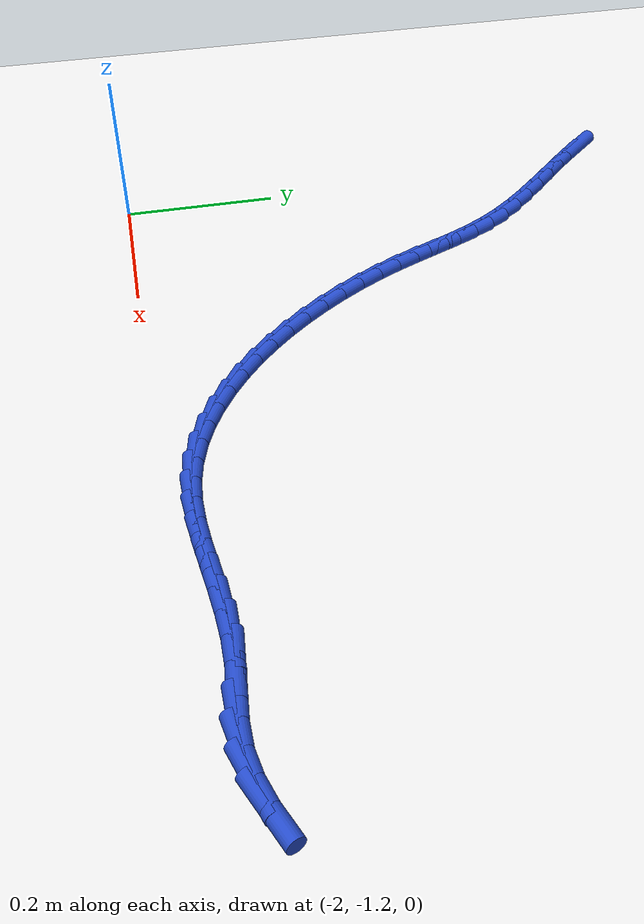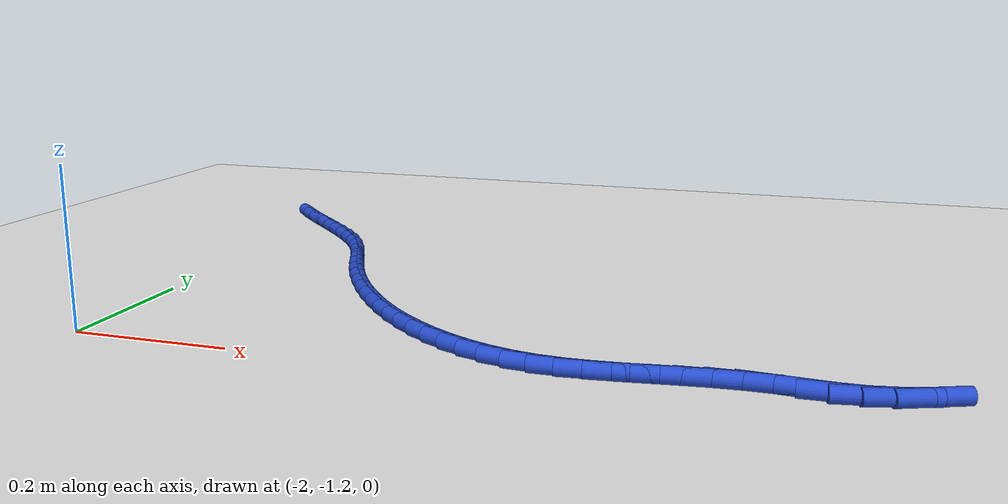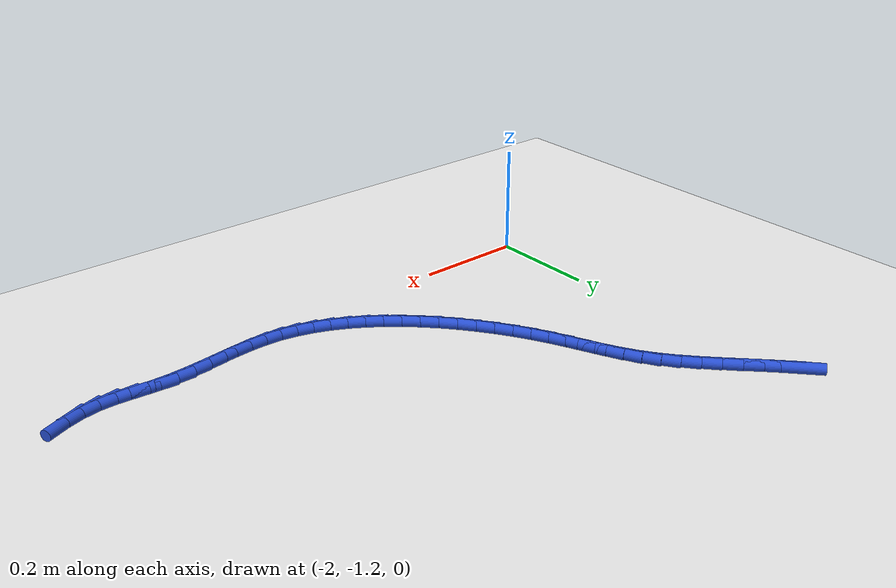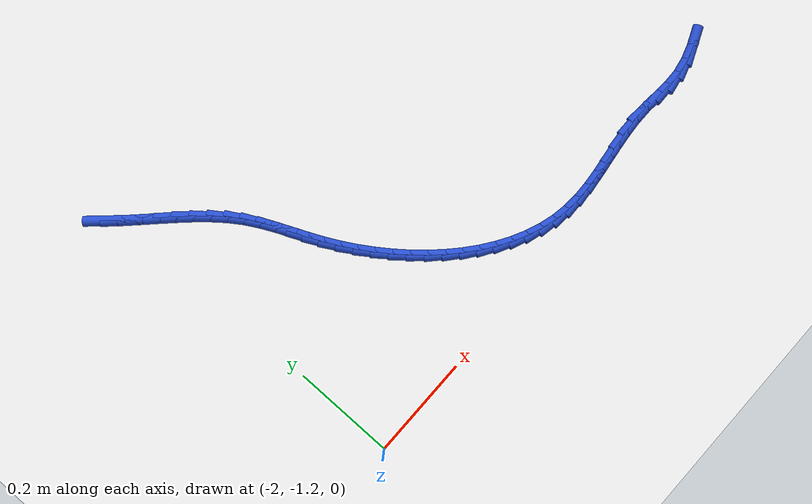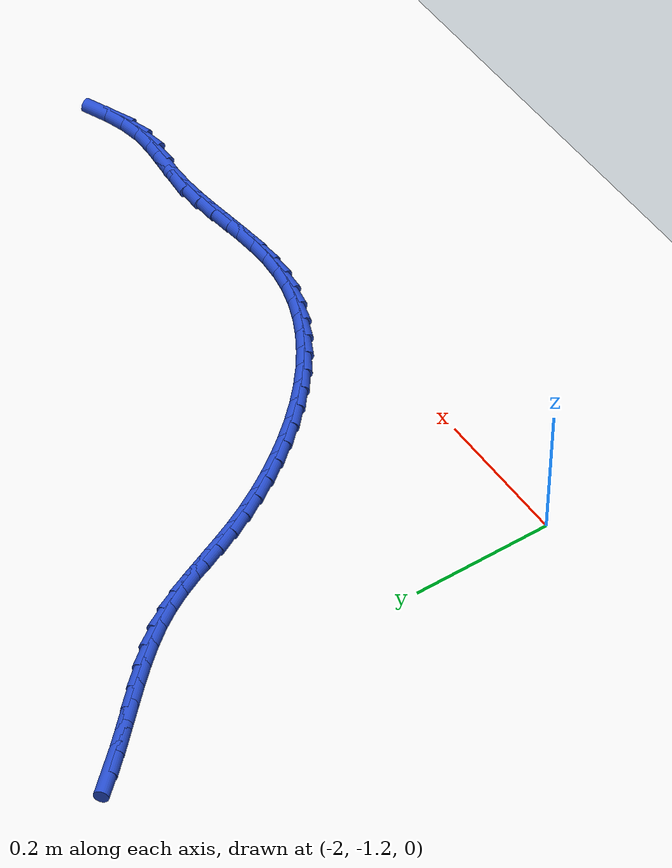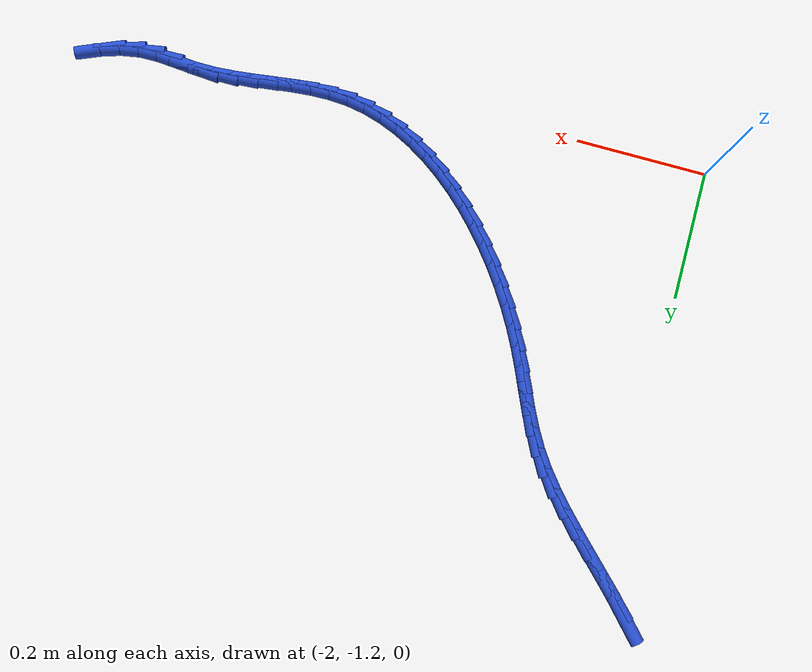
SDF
<sdf version="1.6">
 <world name="default">
  <model name="ground_plane">
   <static>1</static>
   <link name="link">
    <collision name="collision">
     <geometry><plane><normal>0 0 1</normal><size>100 100</size></plane></geometry>
     <surface><friction><ode><mu>100</mu><mu2>50</mu2></ode></friction></surface>
    </collision>
    <visual name="visual">
     <cast_shadows>0</cast_shadows>
     <geometry><plane><normal>0 0 1</normal><size>100 100</size></plane></geometry>
     <material>
      <script><uri>file://media/materials/scripts/gazebo.material</uri><name>Gazebo/WhiteGlow</name></script>
     </material>
    </visual>
   </link>
  </model>
  <model name="line">
   <link name="link_148">
    <pose>-2.0297479284535482 -0.5328654607314254 0.01 0 1.57 -0.8287087077910579</pose>
    <collision name="collision">
     <geometry><cylinder><radius>0.01</radius><length>0.08</length></cylinder></geometry>
    </collision>
    <visual name="visual">
     <material>
      <script><name>Gazebo/Blue</name><uri>file://media/materials/scripts/gazebo.material</uri></script>
     </material>
     <geometry><cylinder><radius>0.01</radius><length>0.08</length></cylinder></geometry>
    </visual>
   </link>
   <link name="link_149">
    <pose>-2.0081536202088803 -0.5564162512589054 0.01 0 1.57 -0.799565282022636</pose>
    <collision name="collision">
     <geometry><cylinder><radius>0.01</radius><length>0.08</length></cylinder></geometry>
    </collision>
    <visual name="visual">
     <material>
      <script><name>Gazebo/Blue</name><uri>file://media/materials/scripts/gazebo.material</uri></script>
     </material>
     <geometry><cylinder><radius>0.01</radius><length>0.08</length></cylinder></geometry>
    </visual>
   </link>
   <link name="link_150">
    <pose>-1.9853206682475746 -0.5799054992300099 0.01 0 1.57 -0.7873501899927877</pose>
    <collision name="collision">
     <geometry><cylinder><radius>0.01</radius><length>0.08</length></cylinder></geometry>
    </collision>
    <visual name="visual">
     <material>
      <script><name>Gazebo/Blue</name><uri>file://media/materials/scripts/gazebo.material</uri></script>
     </material>
     <geometry><cylinder><radius>0.01</radius><length>0.08</length></cylinder></geometry>
    </visual>
   </link>
   <link name="link_151">
    <pose>-1.961858896199537 -0.6034590465484063 0.01 0 1.57 -0.7909655614004615</pose>
    <collision name="collision">
     <geometry><cylinder><radius>0.01</radius><length>0.08</length></cylinder></geometry>
    </collision>
    <visual name="visual">
     <material>
      <script><name>Gazebo/Blue</name><uri>file://media/materials/scripts/gazebo.material</uri></script>
     </material>
     <geometry><cylinder><radius>0.01</radius><length>0.08</length></cylinder></geometry>
    </visual>
   </link>
   <link name="link_152">
    <pose>-1.938378127694677 -0.6272027351177634 0.01 0 1.57 -0.8103076008691977</pose>
    <collision name="collision">
     <geometry><cylinder><radius>0.01</radius><length>0.08</length></cylinder></geometry>
    </collision>
    <visual name="visual">
     <material>
      <script><name>Gazebo/Blue</name><uri>file://media/materials/scripts/gazebo.material</uri></script>
     </material>
     <geometry><cylinder><radius>0.01</radius><length>0.08</length></cylinder></geometry>
    </visual>
   </link>
   <link name="link_153">
    <pose>-1.915488186362902 -0.651262406841749 0.01 0 1.57 -0.8462055123630006</pose>
    <collision name="collision">
     <geometry><cylinder><radius>0.01</radius><length>0.08</length></cylinder></geometry>
    </collision>
    <visual name="visual">
     <material>
      <script><name>Gazebo/Blue</name><uri>file://media/materials/scripts/gazebo.material</uri></script>
     </material>
     <geometry><cylinder><radius>0.01</radius><length>0.08</length></cylinder></geometry>
    </visual>
   </link>
   <link name="link_154">
    <pose>-1.8937988958341205 -0.6757639036240313 0.01 0 1.57 -0.900363518766508</pose>
    <collision name="collision">
     <geometry><cylinder><radius>0.01</radius><length>0.08</length></cylinder></geometry>
    </collision>
    <visual name="visual">
     <material>
      <script><name>Gazebo/Blue</name><uri>file://media/materials/scripts/gazebo.material</uri></script>
     </material>
     <geometry><cylinder><radius>0.01</radius><length>0.08</length></cylinder></geometry>
    </visual>
   </link>
   <link name="link_155">
    <pose>-1.8739200797382405 -0.7008330673682786 0.01 0 1.57 -0.9749377284834236</pose>
    <collision name="collision">
     <geometry><cylinder><radius>0.01</radius><length>0.08</length></cylinder></geometry>
    </collision>
    <visual name="visual">
     <material>
      <script><name>Gazebo/Blue</name><uri>file://media/materials/scripts/gazebo.material</uri></script>
     </material>
     <geometry><cylinder><radius>0.01</radius><length>0.08</length></cylinder></geometry>
    </visual>
   </link>
   <link name="link_156">
    <pose>-1.8564522324978951 -0.726594034806042 0.01 0 1.57 -1.055582311168776</pose>
    <collision name="collision">
     <geometry><cylinder><radius>0.01</radius><length>0.08</length></cylinder></geometry>
    </collision>
    <visual name="visual">
     <material>
      <script><name>Gazebo/Blue</name><uri>file://media/materials/scripts/gazebo.material</uri></script>
     </material>
     <geometry><cylinder><radius>0.01</radius><length>0.08</length></cylinder></geometry>
    </visual>
   </link>
   <link name="link_157">
    <pose>-1.8414592760098603 -0.7530728691152695 0.01 0 1.57 -1.1149742134500347</pose>
    <collision name="collision">
     <geometry><cylinder><radius>0.01</radius><length>0.08</length></cylinder></geometry>
    </collision>
    <visual name="visual">
     <material>
      <script><name>Gazebo/Blue</name><uri>file://media/materials/scripts/gazebo.material</uri></script>
     </material>
     <geometry><cylinder><radius>0.01</radius><length>0.08</length></cylinder></geometry>
    </visual>
   </link>
   <link name="link_158">
    <pose>-1.8281865062649298 -0.7801460068199102 0.01 0 1.57 -1.14833136755022</pose>
    <collision name="collision">
     <geometry><cylinder><radius>0.01</radius><length>0.08</length></cylinder></geometry>
    </collision>
    <visual name="visual">
     <material>
      <script><name>Gazebo/Blue</name><uri>file://media/materials/scripts/gazebo.material</uri></script>
     </material>
     <geometry><cylinder><radius>0.01</radius><length>0.08</length></cylinder></geometry>
    </visual>
   </link>
   <link name="link_159">
    <pose>-1.8158103045933558 -0.8076772883728717 0.01 0 1.57 -1.1548521210735998</pose>
    <collision name="collision">
     <geometry><cylinder><radius>0.01</radius><length>0.08</length></cylinder></geometry>
    </collision>
    <visual name="visual">
     <material>
      <script><name>Gazebo/Blue</name><uri>file://media/materials/scripts/gazebo.material</uri></script>
     </material>
     <geometry><cylinder><radius>0.01</radius><length>0.08</length></cylinder></geometry>
    </visual>
   </link>
   <link name="link_160">
    <pose>-1.8035070523253902 -0.8355305542270618 0.01 0 1.57 -1.1350770653718363</pose>
    <collision name="collision">
     <geometry><cylinder><radius>0.01</radius><length>0.08</length></cylinder></geometry>
    </collision>
    <visual name="visual">
     <material>
      <script><name>Gazebo/Blue</name><uri>file://media/materials/scripts/gazebo.material</uri></script>
     </material>
     <geometry><cylinder><radius>0.01</radius><length>0.08</length></cylinder></geometry>
    </visual>
   </link>
   <link name="link_161">
    <pose>-1.790453130791283 -0.8635696448353875 0.01 0 1.57 -1.0937796663085992</pose>
    <collision name="collision">
     <geometry><cylinder><radius>0.01</radius><length>0.08</length></cylinder></geometry>
    </collision>
    <visual name="visual">
     <material>
      <script><name>Gazebo/Blue</name><uri>file://media/materials/scripts/gazebo.material</uri></script>
     </material>
     <geometry><cylinder><radius>0.01</radius><length>0.08</length></cylinder></geometry>
    </visual>
   </link>
   <link name="link_162">
    <pose>-1.775942122040791 -0.8916468757339817 0.01 0 1.57 -1.048171119187549</pose>
    <collision name="collision">
     <geometry><cylinder><radius>0.01</radius><length>0.08</length></cylinder></geometry>
    </collision>
    <visual name="visual">
     <material>
      <script><name>Gazebo/Blue</name><uri>file://media/materials/scripts/gazebo.material</uri></script>
     </material>
     <geometry><cylinder><radius>0.01</radius><length>0.08</length></cylinder></geometry>
    </visual>
   </link>
   <link name="link_163">
    <pose>-1.7598651003878065 -0.9195558081386362 0.01 0 1.57 -1.0027188257186643</pose>
    <collision name="collision">
     <geometry><cylinder><radius>0.01</radius><length>0.08</length></cylinder></geometry>
    </collision>
    <visual name="visual">
     <material>
      <script><name>Gazebo/Blue</name><uri>file://media/materials/scripts/gazebo.material</uri></script>
     </material>
     <geometry><cylinder><radius>0.01</radius><length>0.08</length></cylinder></geometry>
    </visual>
   </link>
   <link name="link_164">
    <pose>-1.7423030572834166 -0.9470713277893494 0.01 0 1.57 -0.9566326378132299</pose>
    <collision name="collision">
     <geometry><cylinder><radius>0.01</radius><length>0.08</length></cylinder></geometry>
    </collision>
    <visual name="visual">
     <material>
      <script><name>Gazebo/Blue</name><uri>file://media/materials/scripts/gazebo.material</uri></script>
     </material>
     <geometry><cylinder><radius>0.01</radius><length>0.08</length></cylinder></geometry>
    </visual>
   </link>
   <link name="link_165">
    <pose>-1.7233370629863993 -0.9739683126765745 0.01 0 1.57 -0.9091513544925426</pose>
    <collision name="collision">
     <geometry><cylinder><radius>0.01</radius><length>0.08</length></cylinder></geometry>
    </collision>
    <visual name="visual">
     <material>
      <script><name>Gazebo/Blue</name><uri>file://media/materials/scripts/gazebo.material</uri></script>
     </material>
     <geometry><cylinder><radius>0.01</radius><length>0.08</length></cylinder></geometry>
    </visual>
   </link>
   <link name="link_166">
    <pose>-1.7030481877555348 -1.0000216407907656 0.01 0 1.57 -0.8595144568631665</pose>
    <collision name="collision">
     <geometry><cylinder><radius>0.01</radius><length>0.08</length></cylinder></geometry>
    </collision>
    <visual name="visual">
     <material>
      <script><name>Gazebo/Blue</name><uri>file://media/materials/scripts/gazebo.material</uri></script>
     </material>
     <geometry><cylinder><radius>0.01</radius><length>0.08</length></cylinder></geometry>
    </visual>
   </link>
   <link name="link_167">
    <pose>-1.6815175018496002 -1.0250061901223753 0.01 0 1.57 -0.8069381156146176</pose>
    <collision name="collision">
     <geometry><cylinder><radius>0.01</radius><length>0.08</length></cylinder></geometry>
    </collision>
    <visual name="visual">
     <material>
      <script><name>Gazebo/Blue</name><uri>file://media/materials/scripts/gazebo.material</uri></script>
     </material>
     <geometry><cylinder><radius>0.01</radius><length>0.08</length></cylinder></geometry>
    </visual>
   </link>
   <link name="link_168">
    <pose>-1.6588260755273763 -1.0486968386618585 0.01 0 1.57 -0.7505977657825027</pose>
    <collision name="collision">
     <geometry><cylinder><radius>0.01</radius><length>0.08</length></cylinder></geometry>
    </collision>
    <visual name="visual">
     <material>
      <script><name>Gazebo/Blue</name><uri>file://media/materials/scripts/gazebo.material</uri></script>
     </material>
     <geometry><cylinder><radius>0.01</radius><length>0.08</length></cylinder></geometry>
    </visual>
   </link>
   <link name="link_169">
    <pose>-1.6350549790476412 -1.0708684643996687 0.01 0 1.57 -0.6896194066320542</pose>
    <collision name="collision">
     <geometry><cylinder><radius>0.01</radius><length>0.08</length></cylinder></geometry>
    </collision>
    <visual name="visual">
     <material>
      <script><name>Gazebo/Blue</name><uri>file://media/materials/scripts/gazebo.material</uri></script>
     </material>
     <geometry><cylinder><radius>0.01</radius><length>0.08</length></cylinder></geometry>
    </visual>
   </link>
   <link name="link_170">
    <pose>-1.6102852826691738 -1.091295945326259 0.01 0 1.57 -0.6230843330879612</pose>
    <collision name="collision">
     <geometry><cylinder><radius>0.01</radius><length>0.08</length></cylinder></geometry>
    </collision>
    <visual name="visual">
     <material>
      <script><name>Gazebo/Blue</name><uri>file://media/materials/scripts/gazebo.material</uri></script>
     </material>
     <geometry><cylinder><radius>0.01</radius><length>0.08</length></cylinder></geometry>
    </visual>
   </link>
   <link name="link_171">
    <pose>-1.584598056650754 -1.1097541594320837 0.01 0 1.57 -0.5500552260500645</pose>
    <collision name="collision">
     <geometry><cylinder><radius>0.01</radius><length>0.08</length></cylinder></geometry>
    </collision>
    <visual name="visual">
     <material>
      <script><name>Gazebo/Blue</name><uri>file://media/materials/scripts/gazebo.material</uri></script>
     </material>
     <geometry><cylinder><radius>0.01</radius><length>0.08</length></cylinder></geometry>
    </visual>
   </link>
   <link name="link_172">
    <pose>-1.5580743712511602 -1.1260179847075962 0.01 0 1.57 -0.46963495849853837</pose>
    <collision name="collision">
     <geometry><cylinder><radius>0.01</radius><length>0.08</length></cylinder></geometry>
    </collision>
    <visual name="visual">
     <material>
      <script><name>Gazebo/Blue</name><uri>file://media/materials/scripts/gazebo.material</uri></script>
     </material>
     <geometry><cylinder><radius>0.01</radius><length>0.08</length></cylinder></geometry>
    </visual>
   </link>
   <link name="link_173">
    <pose>-1.5307952967291714 -1.1398622991432505 0.01 0 1.57 -0.38107135968447003</pose>
    <collision name="collision">
     <geometry><cylinder><radius>0.01</radius><length>0.08</length></cylinder></geometry>
    </collision>
    <visual name="visual">
     <material>
      <script><name>Gazebo/Blue</name><uri>file://media/materials/scripts/gazebo.material</uri></script>
     </material>
     <geometry><cylinder><radius>0.01</radius><length>0.08</length></cylinder></geometry>
    </visual>
   </link>
   <link name="link_174">
    <pose>-1.5028419033435667 -1.1510619807295 0.01 0 1.57 -0.2839175205019168</pose>
    <collision name="collision">
     <geometry><cylinder><radius>0.01</radius><length>0.08</length></cylinder></geometry>
    </collision>
    <visual name="visual">
     <material>
      <script><name>Gazebo/Blue</name><uri>file://media/materials/scripts/gazebo.material</uri></script>
     </material>
     <geometry><cylinder><radius>0.01</radius><length>0.08</length></cylinder></geometry>
    </visual>
   </link>
   <link name="link_175">
    <pose>-1.474295261353125 -1.1593919074567984 0.01 0 1.57 -0.1782416725722291</pose>
    <collision name="collision">
     <geometry><cylinder><radius>0.01</radius><length>0.08</length></cylinder></geometry>
    </collision>
    <visual name="visual">
     <material>
      <script><name>Gazebo/Blue</name><uri>file://media/materials/scripts/gazebo.material</uri></script>
     </material>
     <geometry><cylinder><radius>0.01</radius><length>0.08</length></cylinder></geometry>
    </visual>
   </link>
   <link name="link_176">
    <pose>-1.4452364410166263 -1.1646269573155994 0.01 0 1.57 -0.06719111493578148</pose>
    <collision name="collision">
     <geometry><cylinder><radius>0.01</radius><length>0.08</length></cylinder></geometry>
    </collision>
    <visual name="visual">
     <material>
      <script><name>Gazebo/Blue</name><uri>file://media/materials/scripts/gazebo.material</uri></script>
     </material>
     <geometry><cylinder><radius>0.01</radius><length>0.08</length></cylinder></geometry>
    </visual>
   </link>
   <link name="link_177">
    <pose>-1.415745256803898 -1.1666114902507219 0.01 0 1.57 0.02622780860448896</pose>
    <collision name="collision">
     <geometry><cylinder><radius>0.01</radius><length>0.08</length></cylinder></geometry>
    </collision>
    <visual name="visual">
     <material>
      <script><name>Gazebo/Blue</name><uri>file://media/materials/scripts/gazebo.material</uri></script>
     </material>
     <geometry><cylinder><radius>0.01</radius><length>0.08</length></cylinder></geometry>
    </visual>
   </link>
   <link name="link_178">
    <pose>-1.3858899848894521 -1.1658282722935374 0.01 0 1.57 0.09010360494578631</pose>
    <collision name="collision">
     <geometry><cylinder><radius>0.01</radius><length>0.08</length></cylinder></geometry>
    </collision>
    <visual name="visual">
     <material>
      <script><name>Gazebo/Blue</name><uri>file://media/materials/scripts/gazebo.material</uri></script>
     </material>
     <geometry><cylinder><radius>0.01</radius><length>0.08</length></cylinder></geometry>
    </visual>
   </link>
   <link name="link_179">
    <pose>-1.3557326923619244 -1.1631036140030209 0.01 0 1.57 0.12554720612759881</pose>
    <collision name="collision">
     <geometry><cylinder><radius>0.01</radius><length>0.08</length></cylinder></geometry>
    </collision>
    <visual name="visual">
     <material>
      <script><name>Gazebo/Blue</name><uri>file://media/materials/scripts/gazebo.material</uri></script>
     </material>
     <geometry><cylinder><radius>0.01</radius><length>0.08</length></cylinder></geometry>
    </visual>
   </link>
   <link name="link_180">
    <pose>-1.3253353864312205 -1.1592671389878422 0.01 0 1.57 0.13389966209357448</pose>
    <collision name="collision">
     <geometry><cylinder><radius>0.01</radius><length>0.08</length></cylinder></geometry>
    </collision>
    <visual name="visual">
     <material>
      <script><name>Gazebo/Blue</name><uri>file://media/materials/scripts/gazebo.material</uri></script>
     </material>
     <geometry><cylinder><radius>0.01</radius><length>0.08</length></cylinder></geometry>
    </visual>
   </link>
   <link name="link_181">
    <pose>-1.2947600743072458 -1.1551484708566708 0.01 0 1.57 0.11583896077446507</pose>
    <collision name="collision">
     <geometry><cylinder><radius>0.01</radius><length>0.08</length></cylinder></geometry>
    </collision>
    <visual name="visual">
     <material>
      <script><name>Gazebo/Blue</name><uri>file://media/materials/scripts/gazebo.material</uri></script>
     </material>
     <geometry><cylinder><radius>0.01</radius><length>0.08</length></cylinder></geometry>
    </visual>
   </link>
   <link name="link_182">
    <pose>-1.2640687631999052 -1.1515772332181768 0.01 0 1.57 0.07124567189505843</pose>
    <collision name="collision">
     <geometry><cylinder><radius>0.01</radius><length>0.08</length></cylinder></geometry>
    </collision>
    <visual name="visual">
     <material>
      <script><name>Gazebo/Blue</name><uri>file://media/materials/scripts/gazebo.material</uri></script>
     </material>
     <geometry><cylinder><radius>0.01</radius><length>0.08</length></cylinder></geometry>
    </visual>
   </link>
   <link name="link_183">
    <pose>-1.233323460319105 -1.1493830496810298 0.01 0 1.57 -0.00040648258908170166</pose>
    <collision name="collision">
     <geometry><cylinder><radius>0.01</radius><length>0.08</length></cylinder></geometry>
    </collision>
    <visual name="visual">
     <material>
      <script><name>Gazebo/Blue</name><uri>file://media/materials/scripts/gazebo.material</uri></script>
     </material>
     <geometry><cylinder><radius>0.01</radius><length>0.08</length></cylinder></geometry>
    </visual>
   </link>
   <link name="link_184">
    <pose>-1.2025861728747507 -1.1493955438538996 0.01 0 1.57 -0.07975276754811966</pose>
    <collision name="collision">
     <geometry><cylinder><radius>0.01</radius><length>0.08</length></cylinder></geometry>
    </collision>
    <visual name="visual">
     <material>
      <script><name>Gazebo/Blue</name><uri>file://media/materials/scripts/gazebo.material</uri></script>
     </material>
     <geometry><cylinder><radius>0.01</radius><length>0.08</length></cylinder></geometry>
    </visual>
   </link>
   <link name="link_185">
    <pose>-1.1719409469106836 -1.1518447804328882 0.01 0 1.57 -0.08098860481579857</pose>
    <collision name="collision">
     <geometry><cylinder><radius>0.01</radius><length>0.08</length></cylinder></geometry>
    </collision>
    <visual name="visual">
     <material>
      <script><name>Gazebo/Blue</name><uri>file://media/materials/scripts/gazebo.material</uri></script>
     </material>
     <geometry><cylinder><radius>0.01</radius><length>0.08</length></cylinder></geometry>
    </visual>
   </link>
   <link name="link_186">
    <pose>-1.1415692710491427 -1.154309932215276 0.01 0 1.57 0.021539985853734057</pose>
    <collision name="collision">
     <geometry><cylinder><radius>0.01</radius><length>0.08</length></cylinder></geometry>
    </collision>
    <visual name="visual">
     <material>
      <script><name>Gazebo/Blue</name><uri>file://media/materials/scripts/gazebo.material</uri></script>
     </material>
     <geometry><cylinder><radius>0.01</radius><length>0.08</length></cylinder></geometry>
    </visual>
   </link>
   <link name="link_187">
    <pose>-1.111677343367889 -1.1536659609181332 0.01 0 1.57 0.18004516237593735</pose>
    <collision name="collision">
     <geometry><cylinder><radius>0.01</radius><length>0.08</length></cylinder></geometry>
    </collision>
    <visual name="visual">
     <material>
      <script><name>Gazebo/Blue</name><uri>file://media/materials/scripts/gazebo.material</uri></script>
     </material>
     <geometry><cylinder><radius>0.01</radius><length>0.08</length></cylinder></geometry>
    </visual>
   </link>
   <link name="link_188">
    <pose>-1.0823504866615201 -1.1483279982761994 0.01 0 1.57 0.3121636133301221</pose>
    <collision name="collision">
     <geometry><cylinder><radius>0.01</radius><length>0.08</length></cylinder></geometry>
    </collision>
    <visual name="visual">
     <material>
      <script><name>Gazebo/Blue</name><uri>file://media/materials/scripts/gazebo.material</uri></script>
     </material>
     <geometry><cylinder><radius>0.01</radius><length>0.08</length></cylinder></geometry>
    </visual>
   </link>
   <link name="link_189">
    <pose>-1.053493191743604 -1.1390153225681068 0.01 0 1.57 0.40979835742647136</pose>
    <collision name="collision">
     <geometry><cylinder><radius>0.01</radius><length>0.08</length></cylinder></geometry>
    </collision>
    <visual name="visual">
     <material>
      <script><name>Gazebo/Blue</name><uri>file://media/materials/scripts/gazebo.material</uri></script>
     </material>
     <geometry><cylinder><radius>0.01</radius><length>0.08</length></cylinder></geometry>
    </visual>
   </link>
  </model>
 </world>
</sdf>
